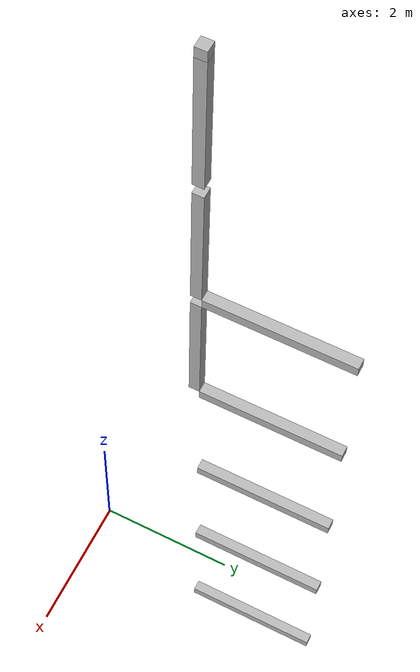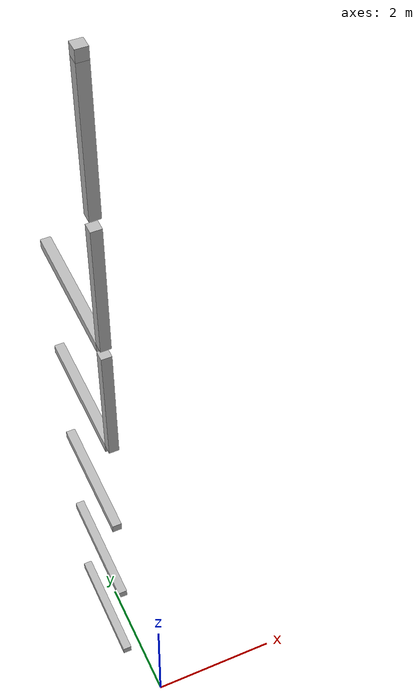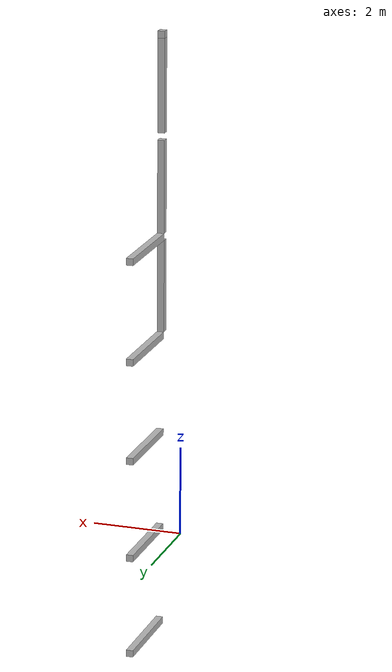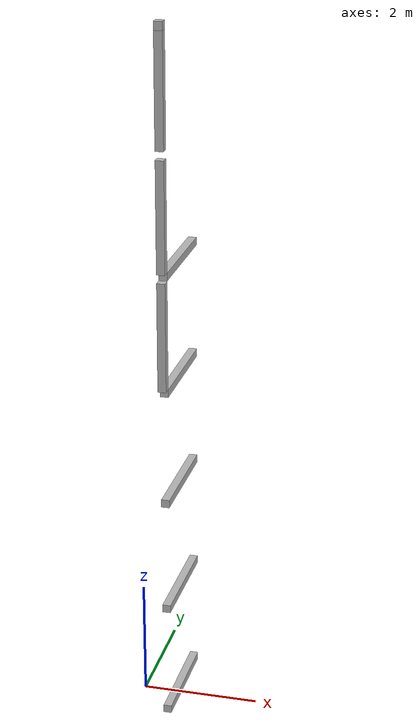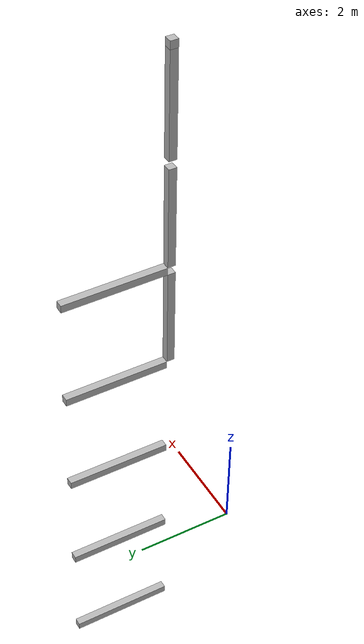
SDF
<sdf version="1.7">
 <world name="default">
  <model name="orthogonal_747_2.000.15_TS">
   <static>1</static>
   <link name="y_link_0_3_3">
    <inertial>
     <mass>1</mass>
     <inertia>
      <ixx>0.166667</ixx>
      <ixy>0</ixy>
      <ixz>0</ixz>
      <iyy>0.166667</iyy>
      <iyz>0</iyz>
      <izz>0.166667</izz>
     </inertia>
    </inertial>
    <pose>6.45 7.525 1.075 0 -0 0</pose>
    <visual name="visual_0">
     <laser_retro>554</laser_retro>
     <geometry><box><size>0.15 1e-06 0.15</size></box></geometry>
     <material>
      <script><name>Gazebo/Grey</name><uri>file://media/materials/scripts/gazebo.material</uri></script>
      <shader type="pixel"><normal_map>__default__</normal_map></shader>
      <ambient>0.678 0.498 0.659 1</ambient>
      <diffuse>0.7 0.7 0.7 1</diffuse>
      <specular>0.01 0.01 0.01 1</specular>
      <emissive>0 0 0 1</emissive>
     </material>
     <pose>0 -1 0 0 -0 0</pose>
     <transparency>1</transparency>
    </visual>
    <visual name="visual_1">
     <laser_retro>555</laser_retro>
     <geometry><box><size>0.15 1e-06 0.15</size></box></geometry>
     <material>
      <script><name>Gazebo/Grey</name><uri>file://media/materials/scripts/gazebo.material</uri></script>
      <shader type="pixel"><normal_map>__default__</normal_map></shader>
      <ambient>0.447 0.624 0.812 1</ambient>
      <diffuse>0.7 0.7 0.7 1</diffuse>
      <specular>0.01 0.01 0.01 1</specular>
      <emissive>0 0 0 1</emissive>
     </material>
     <pose>0 1 0 0 -0 0</pose>
     <transparency>1</transparency>
    </visual>
    <visual name="visual_2">
     <laser_retro>556</laser_retro>
     <geometry><box><size>0.15 2 1e-06</size></box></geometry>
     <material>
      <script><name>Gazebo/Grey</name><uri>file://media/materials/scripts/gazebo.material</uri></script>
      <shader type="pixel"><normal_map>__default__</normal_map></shader>
      <ambient>0.988 0.686 0.243 1</ambient>
      <diffuse>0.7 0.7 0.7 1</diffuse>
      <specular>0.01 0.01 0.01 1</specular>
      <emissive>0 0 0 1</emissive>
     </material>
     <pose>0 0 -0.075 0 -0 0</pose>
     <transparency>1</transparency>
    </visual>
    <visual name="visual_3">
     <laser_retro>557</laser_retro>
     <geometry><box><size>1e-06 2 0.15</size></box></geometry>
     <material>
      <script><name>Gazebo/Grey</name><uri>file://media/materials/scripts/gazebo.material</uri></script>
      <shader type="pixel"><normal_map>__default__</normal_map></shader>
      <ambient>0.988 0.914 0.31 1</ambient>
      <diffuse>0.7 0.7 0.7 1</diffuse>
      <specular>0.01 0.01 0.01 1</specular>
      <emissive>0 0 0 1</emissive>
     </material>
     <pose>0.075 0 0 0 -0 0</pose>
     <transparency>1</transparency>
    </visual>
    <visual name="visual_4">
     <laser_retro>558</laser_retro>
     <geometry><box><size>0.15 2 1e-06</size></box></geometry>
     <material>
      <script><name>Gazebo/Grey</name><uri>file://media/materials/scripts/gazebo.material</uri></script>
      <shader type="pixel"><normal_map>__default__</normal_map></shader>
      <ambient>0.937 0.161 0.161 1</ambient>
      <diffuse>0.7 0.7 0.7 1</diffuse>
      <specular>0.01 0.01 0.01 1</specular>
      <emissive>0 0 0 1</emissive>
     </material>
     <pose>0 0 0.075 0 -0 0</pose>
     <transparency>1</transparency>
    </visual>
    <visual name="visual_5">
     <laser_retro>559</laser_retro>
     <geometry><box><size>1e-06 2 0.15</size></box></geometry>
     <material>
      <script><name>Gazebo/Grey</name><uri>file://media/materials/scripts/gazebo.material</uri></script>
      <shader type="pixel"><normal_map>__default__</normal_map></shader>
      <ambient>0.541 0.886 0.204 1</ambient>
      <diffuse>0.7 0.7 0.7 1</diffuse>
      <specular>0.01 0.01 0.01 1</specular>
      <emissive>0 0 0 1</emissive>
     </material>
     <pose>-0.075 0 0 0 -0 0</pose>
     <transparency>1</transparency>
    </visual>
    <visual name="visual_texture">
     <geometry><box><size>0.149985 1.9998 0.149985</size></box></geometry>
     <material>
      <script>
       <uri>model://BASE_MODELS/simple_block_v2_textured/materials/scripts</uri>
       <uri>model://BASE_MODELS/simple_block_v2_textured/materials/textures</uri>
       <name>metal</name>
      </script>
     </material>
     <laser_retro>560</laser_retro>
    </visual>
    <collision name="collision">
     <geometry><box><size>0.15 2 0.15</size></box></geometry>
     <surface>
      <friction>
       <ode><mu>1</mu><mu2>1</mu2><fdir1>0 0 0</fdir1><slip1>0</slip1><slip2>0</slip2></ode>
       <torsional>
        <coefficient>1</coefficient>
        <patch_radius>0</patch_radius>
        <surface_radius>0</surface_radius>
        <use_patch_radius>1</use_patch_radius>
        <ode><slip>0</slip></ode>
       </torsional>
      </friction>
      <bounce><restitution_coefficient>0</restitution_coefficient><threshold>1e+06</threshold></bounce>
      <contact>
       <collide_without_contact>0</collide_without_contact>
       <collide_without_contact_bitmask>1</collide_without_contact_bitmask>
       <collide_bitmask>1</collide_bitmask>
       <ode>
        <soft_cfm>0</soft_cfm>
        <soft_erp>0.2</soft_erp>
        <kp>1e+13</kp>
        <kd>1</kd>
        <max_vel>0.01</max_vel>
        <min_depth>0</min_depth>
       </ode>
       <bullet>
        <split_impulse>1</split_impulse>
        <split_impulse_penetration_threshold>-0.01</split_impulse_penetration_threshold>
        <soft_cfm>0</soft_cfm>
        <soft_erp>0.2</soft_erp>
        <kp>1e+13</kp>
        <kd>1</kd>
       </bullet>
      </contact>
     </surface>
    </collision>
   </link>
   <link name="y_link_1_3_3">
    <inertial>
     <mass>1</mass>
     <inertia>
      <ixx>0.166667</ixx>
      <ixy>0</ixy>
      <ixz>0</ixz>
      <iyy>0.166667</iyy>
      <iyz>0</iyz>
      <izz>0.166667</izz>
     </inertia>
    </inertial>
    <pose>6.45 7.525 3.225 0 -0 0</pose>
    <visual name="visual_0">
     <laser_retro>1394</laser_retro>
     <geometry><box><size>0.15 1e-06 0.15</size></box></geometry>
     <material>
      <script><name>Gazebo/Grey</name><uri>file://media/materials/scripts/gazebo.material</uri></script>
      <shader type="pixel"><normal_map>__default__</normal_map></shader>
      <ambient>0.678 0.498 0.659 1</ambient>
      <diffuse>0.7 0.7 0.7 1</diffuse>
      <specular>0.01 0.01 0.01 1</specular>
      <emissive>0 0 0 1</emissive>
     </material>
     <pose>0 -1 0 0 -0 0</pose>
     <transparency>1</transparency>
    </visual>
    <visual name="visual_1">
     <laser_retro>1395</laser_retro>
     <geometry><box><size>0.15 1e-06 0.15</size></box></geometry>
     <material>
      <script><name>Gazebo/Grey</name><uri>file://media/materials/scripts/gazebo.material</uri></script>
      <shader type="pixel"><normal_map>__default__</normal_map></shader>
      <ambient>0.447 0.624 0.812 1</ambient>
      <diffuse>0.7 0.7 0.7 1</diffuse>
      <specular>0.01 0.01 0.01 1</specular>
      <emissive>0 0 0 1</emissive>
     </material>
     <pose>0 1 0 0 -0 0</pose>
     <transparency>1</transparency>
    </visual>
    <visual name="visual_2">
     <laser_retro>1396</laser_retro>
     <geometry><box><size>0.15 2 1e-06</size></box></geometry>
     <material>
      <script><name>Gazebo/Grey</name><uri>file://media/materials/scripts/gazebo.material</uri></script>
      <shader type="pixel"><normal_map>__default__</normal_map></shader>
      <ambient>0.988 0.686 0.243 1</ambient>
      <diffuse>0.7 0.7 0.7 1</diffuse>
      <specular>0.01 0.01 0.01 1</specular>
      <emissive>0 0 0 1</emissive>
     </material>
     <pose>0 0 -0.075 0 -0 0</pose>
     <transparency>1</transparency>
    </visual>
    <visual name="visual_3">
     <laser_retro>1397</laser_retro>
     <geometry><box><size>1e-06 2 0.15</size></box></geometry>
     <material>
      <script><name>Gazebo/Grey</name><uri>file://media/materials/scripts/gazebo.material</uri></script>
      <shader type="pixel"><normal_map>__default__</normal_map></shader>
      <ambient>0.988 0.914 0.31 1</ambient>
      <diffuse>0.7 0.7 0.7 1</diffuse>
      <specular>0.01 0.01 0.01 1</specular>
      <emissive>0 0 0 1</emissive>
     </material>
     <pose>0.075 0 0 0 -0 0</pose>
     <transparency>1</transparency>
    </visual>
    <visual name="visual_4">
     <laser_retro>1398</laser_retro>
     <geometry><box><size>0.15 2 1e-06</size></box></geometry>
     <material>
      <script><name>Gazebo/Grey</name><uri>file://media/materials/scripts/gazebo.material</uri></script>
      <shader type="pixel"><normal_map>__default__</normal_map></shader>
      <ambient>0.937 0.161 0.161 1</ambient>
      <diffuse>0.7 0.7 0.7 1</diffuse>
      <specular>0.01 0.01 0.01 1</specular>
      <emissive>0 0 0 1</emissive>
     </material>
     <pose>0 0 0.075 0 -0 0</pose>
     <transparency>1</transparency>
    </visual>
    <visual name="visual_5">
     <laser_retro>1399</laser_retro>
     <geometry><box><size>1e-06 2 0.15</size></box></geometry>
     <material>
      <script><name>Gazebo/Grey</name><uri>file://media/materials/scripts/gazebo.material</uri></script>
      <shader type="pixel"><normal_map>__default__</normal_map></shader>
      <ambient>0.541 0.886 0.204 1</ambient>
      <diffuse>0.7 0.7 0.7 1</diffuse>
      <specular>0.01 0.01 0.01 1</specular>
      <emissive>0 0 0 1</emissive>
     </material>
     <pose>-0.075 0 0 0 -0 0</pose>
     <transparency>1</transparency>
    </visual>
    <visual name="visual_texture">
     <geometry><box><size>0.149985 1.9998 0.149985</size></box></geometry>
     <material>
      <script>
       <uri>model://BASE_MODELS/simple_block_v2_textured/materials/scripts</uri>
       <uri>model://BASE_MODELS/simple_block_v2_textured/materials/textures</uri>
       <name>metal</name>
      </script>
     </material>
     <laser_retro>1400</laser_retro>
    </visual>
    <collision name="collision">
     <geometry><box><size>0.15 2 0.15</size></box></geometry>
     <surface>
      <friction>
       <ode><mu>1</mu><mu2>1</mu2><fdir1>0 0 0</fdir1><slip1>0</slip1><slip2>0</slip2></ode>
       <torsional>
        <coefficient>1</coefficient>
        <patch_radius>0</patch_radius>
        <surface_radius>0</surface_radius>
        <use_patch_radius>1</use_patch_radius>
        <ode><slip>0</slip></ode>
       </torsional>
      </friction>
      <bounce><restitution_coefficient>0</restitution_coefficient><threshold>1e+06</threshold></bounce>
      <contact>
       <collide_without_contact>0</collide_without_contact>
       <collide_without_contact_bitmask>1</collide_without_contact_bitmask>
       <collide_bitmask>1</collide_bitmask>
       <ode>
        <soft_cfm>0</soft_cfm>
        <soft_erp>0.2</soft_erp>
        <kp>1e+13</kp>
        <kd>1</kd>
        <max_vel>0.01</max_vel>
        <min_depth>0</min_depth>
       </ode>
       <bullet>
        <split_impulse>1</split_impulse>
        <split_impulse_penetration_threshold>-0.01</split_impulse_penetration_threshold>
        <soft_cfm>0</soft_cfm>
        <soft_erp>0.2</soft_erp>
        <kp>1e+13</kp>
        <kd>1</kd>
       </bullet>
      </contact>
     </surface>
    </collision>
   </link>
   <link name="y_link_2_3_3">
    <inertial>
     <mass>1</mass>
     <inertia>
      <ixx>0.166667</ixx>
      <ixy>0</ixy>
      <ixz>0</ixz>
      <iyy>0.166667</iyy>
      <iyz>0</iyz>
      <izz>0.166667</izz>
     </inertia>
    </inertial>
    <pose>6.45 7.525 5.375 0 -0 0</pose>
    <visual name="visual_0">
     <laser_retro>2297</laser_retro>
     <geometry><box><size>0.15 1e-06 0.15</size></box></geometry>
     <material>
      <script><name>Gazebo/Grey</name><uri>file://media/materials/scripts/gazebo.material</uri></script>
      <shader type="pixel"><normal_map>__default__</normal_map></shader>
      <ambient>0.678 0.498 0.659 1</ambient>
      <diffuse>0.7 0.7 0.7 1</diffuse>
      <specular>0.01 0.01 0.01 1</specular>
      <emissive>0 0 0 1</emissive>
     </material>
     <pose>0 -1 0 0 -0 0</pose>
     <transparency>1</transparency>
    </visual>
    <visual name="visual_1">
     <laser_retro>2298</laser_retro>
     <geometry><box><size>0.15 1e-06 0.15</size></box></geometry>
     <material>
      <script><name>Gazebo/Grey</name><uri>file://media/materials/scripts/gazebo.material</uri></script>
      <shader type="pixel"><normal_map>__default__</normal_map></shader>
      <ambient>0.447 0.624 0.812 1</ambient>
      <diffuse>0.7 0.7 0.7 1</diffuse>
      <specular>0.01 0.01 0.01 1</specular>
      <emissive>0 0 0 1</emissive>
     </material>
     <pose>0 1 0 0 -0 0</pose>
     <transparency>1</transparency>
    </visual>
    <visual name="visual_2">
     <laser_retro>2299</laser_retro>
     <geometry><box><size>0.15 2 1e-06</size></box></geometry>
     <material>
      <script><name>Gazebo/Grey</name><uri>file://media/materials/scripts/gazebo.material</uri></script>
      <shader type="pixel"><normal_map>__default__</normal_map></shader>
      <ambient>0.988 0.686 0.243 1</ambient>
      <diffuse>0.7 0.7 0.7 1</diffuse>
      <specular>0.01 0.01 0.01 1</specular>
      <emissive>0 0 0 1</emissive>
     </material>
     <pose>0 0 -0.075 0 -0 0</pose>
     <transparency>1</transparency>
    </visual>
    <visual name="visual_3">
     <laser_retro>2300</laser_retro>
     <geometry><box><size>1e-06 2 0.15</size></box></geometry>
     <material>
      <script><name>Gazebo/Grey</name><uri>file://media/materials/scripts/gazebo.material</uri></script>
      <shader type="pixel"><normal_map>__default__</normal_map></shader>
      <ambient>0.988 0.914 0.31 1</ambient>
      <diffuse>0.7 0.7 0.7 1</diffuse>
      <specular>0.01 0.01 0.01 1</specular>
      <emissive>0 0 0 1</emissive>
     </material>
     <pose>0.075 0 0 0 -0 0</pose>
     <transparency>1</transparency>
    </visual>
    <visual name="visual_4">
     <laser_retro>2301</laser_retro>
     <geometry><box><size>0.15 2 1e-06</size></box></geometry>
     <material>
      <script><name>Gazebo/Grey</name><uri>file://media/materials/scripts/gazebo.material</uri></script>
      <shader type="pixel"><normal_map>__default__</normal_map></shader>
      <ambient>0.937 0.161 0.161 1</ambient>
      <diffuse>0.7 0.7 0.7 1</diffuse>
      <specular>0.01 0.01 0.01 1</specular>
      <emissive>0 0 0 1</emissive>
     </material>
     <pose>0 0 0.075 0 -0 0</pose>
     <transparency>1</transparency>
    </visual>
    <visual name="visual_5">
     <laser_retro>2302</laser_retro>
     <geometry><box><size>1e-06 2 0.15</size></box></geometry>
     <material>
      <script><name>Gazebo/Grey</name><uri>file://media/materials/scripts/gazebo.material</uri></script>
      <shader type="pixel"><normal_map>__default__</normal_map></shader>
      <ambient>0.541 0.886 0.204 1</ambient>
      <diffuse>0.7 0.7 0.7 1</diffuse>
      <specular>0.01 0.01 0.01 1</specular>
      <emissive>0 0 0 1</emissive>
     </material>
     <pose>-0.075 0 0 0 -0 0</pose>
     <transparency>1</transparency>
    </visual>
    <visual name="visual_texture">
     <geometry><box><size>0.149985 1.9998 0.149985</size></box></geometry>
     <material>
      <script>
       <uri>model://BASE_MODELS/simple_block_v2_textured/materials/scripts</uri>
       <uri>model://BASE_MODELS/simple_block_v2_textured/materials/textures</uri>
       <name>metal</name>
      </script>
     </material>
     <laser_retro>2303</laser_retro>
    </visual>
    <collision name="collision">
     <geometry><box><size>0.15 2 0.15</size></box></geometry>
     <surface>
      <friction>
       <ode><mu>1</mu><mu2>1</mu2><fdir1>0 0 0</fdir1><slip1>0</slip1><slip2>0</slip2></ode>
       <torsional>
        <coefficient>1</coefficient>
        <patch_radius>0</patch_radius>
        <surface_radius>0</surface_radius>
        <use_patch_radius>1</use_patch_radius>
        <ode><slip>0</slip></ode>
       </torsional>
      </friction>
      <bounce><restitution_coefficient>0</restitution_coefficient><threshold>1e+06</threshold></bounce>
      <contact>
       <collide_without_contact>0</collide_without_contact>
       <collide_without_contact_bitmask>1</collide_without_contact_bitmask>
       <collide_bitmask>1</collide_bitmask>
       <ode>
        <soft_cfm>0</soft_cfm>
        <soft_erp>0.2</soft_erp>
        <kp>1e+13</kp>
        <kd>1</kd>
        <max_vel>0.01</max_vel>
        <min_depth>0</min_depth>
       </ode>
       <bullet>
        <split_impulse>1</split_impulse>
        <split_impulse_penetration_threshold>-0.01</split_impulse_penetration_threshold>
        <soft_cfm>0</soft_cfm>
        <soft_erp>0.2</soft_erp>
        <kp>1e+13</kp>
        <kd>1</kd>
       </bullet>
      </contact>
     </surface>
    </collision>
   </link>
   <link name="y_link_3_3_3">
    <inertial>
     <mass>1</mass>
     <inertia>
      <ixx>0.166667</ixx>
      <ixy>0</ixy>
      <ixz>0</ixz>
      <iyy>0.166667</iyy>
      <iyz>0</iyz>
      <izz>0.166667</izz>
     </inertia>
    </inertial>
    <pose>6.45 7.525 7.525 0 -0 0</pose>
    <visual name="visual_0">
     <laser_retro>3200</laser_retro>
     <geometry><box><size>0.15 1e-06 0.15</size></box></geometry>
     <material>
      <script><name>Gazebo/Grey</name><uri>file://media/materials/scripts/gazebo.material</uri></script>
      <shader type="pixel"><normal_map>__default__</normal_map></shader>
      <ambient>0.678 0.498 0.659 1</ambient>
      <diffuse>0.7 0.7 0.7 1</diffuse>
      <specular>0.01 0.01 0.01 1</specular>
      <emissive>0 0 0 1</emissive>
     </material>
     <pose>0 -1 0 0 -0 0</pose>
     <transparency>1</transparency>
    </visual>
    <visual name="visual_1">
     <laser_retro>3201</laser_retro>
     <geometry><box><size>0.15 1e-06 0.15</size></box></geometry>
     <material>
      <script><name>Gazebo/Grey</name><uri>file://media/materials/scripts/gazebo.material</uri></script>
      <shader type="pixel"><normal_map>__default__</normal_map></shader>
      <ambient>0.447 0.624 0.812 1</ambient>
      <diffuse>0.7 0.7 0.7 1</diffuse>
      <specular>0.01 0.01 0.01 1</specular>
      <emissive>0 0 0 1</emissive>
     </material>
     <pose>0 1 0 0 -0 0</pose>
     <transparency>1</transparency>
    </visual>
    <visual name="visual_2">
     <laser_retro>3202</laser_retro>
     <geometry><box><size>0.15 2 1e-06</size></box></geometry>
     <material>
      <script><name>Gazebo/Grey</name><uri>file://media/materials/scripts/gazebo.material</uri></script>
      <shader type="pixel"><normal_map>__default__</normal_map></shader>
      <ambient>0.988 0.686 0.243 1</ambient>
      <diffuse>0.7 0.7 0.7 1</diffuse>
      <specular>0.01 0.01 0.01 1</specular>
      <emissive>0 0 0 1</emissive>
     </material>
     <pose>0 0 -0.075 0 -0 0</pose>
     <transparency>1</transparency>
    </visual>
    <visual name="visual_3">
     <laser_retro>3203</laser_retro>
     <geometry><box><size>1e-06 2 0.15</size></box></geometry>
     <material>
      <script><name>Gazebo/Grey</name><uri>file://media/materials/scripts/gazebo.material</uri></script>
      <shader type="pixel"><normal_map>__default__</normal_map></shader>
      <ambient>0.988 0.914 0.31 1</ambient>
      <diffuse>0.7 0.7 0.7 1</diffuse>
      <specular>0.01 0.01 0.01 1</specular>
      <emissive>0 0 0 1</emissive>
     </material>
     <pose>0.075 0 0 0 -0 0</pose>
     <transparency>1</transparency>
    </visual>
    <visual name="visual_4">
     <laser_retro>3204</laser_retro>
     <geometry><box><size>0.15 2 1e-06</size></box></geometry>
     <material>
      <script><name>Gazebo/Grey</name><uri>file://media/materials/scripts/gazebo.material</uri></script>
      <shader type="pixel"><normal_map>__default__</normal_map></shader>
      <ambient>0.937 0.161 0.161 1</ambient>
      <diffuse>0.7 0.7 0.7 1</diffuse>
      <specular>0.01 0.01 0.01 1</specular>
      <emissive>0 0 0 1</emissive>
     </material>
     <pose>0 0 0.075 0 -0 0</pose>
     <transparency>1</transparency>
    </visual>
    <visual name="visual_5">
     <laser_retro>3205</laser_retro>
     <geometry><box><size>1e-06 2 0.15</size></box></geometry>
     <material>
      <script><name>Gazebo/Grey</name><uri>file://media/materials/scripts/gazebo.material</uri></script>
      <shader type="pixel"><normal_map>__default__</normal_map></shader>
      <ambient>0.541 0.886 0.204 1</ambient>
      <diffuse>0.7 0.7 0.7 1</diffuse>
      <specular>0.01 0.01 0.01 1</specular>
      <emissive>0 0 0 1</emissive>
     </material>
     <pose>-0.075 0 0 0 -0 0</pose>
     <transparency>1</transparency>
    </visual>
    <visual name="visual_texture">
     <geometry><box><size>0.149985 1.9998 0.149985</size></box></geometry>
     <material>
      <script>
       <uri>model://BASE_MODELS/simple_block_v2_textured/materials/scripts</uri>
       <uri>model://BASE_MODELS/simple_block_v2_textured/materials/textures</uri>
       <name>metal</name>
      </script>
     </material>
     <laser_retro>3206</laser_retro>
    </visual>
    <collision name="collision">
     <geometry><box><size>0.15 2 0.15</size></box></geometry>
     <surface>
      <friction>
       <ode><mu>1</mu><mu2>1</mu2><fdir1>0 0 0</fdir1><slip1>0</slip1><slip2>0</slip2></ode>
       <torsional>
        <coefficient>1</coefficient>
        <patch_radius>0</patch_radius>
        <surface_radius>0</surface_radius>
        <use_patch_radius>1</use_patch_radius>
        <ode><slip>0</slip></ode>
       </torsional>
      </friction>
      <bounce><restitution_coefficient>0</restitution_coefficient><threshold>1e+06</threshold></bounce>
      <contact>
       <collide_without_contact>0</collide_without_contact>
       <collide_without_contact_bitmask>1</collide_without_contact_bitmask>
       <collide_bitmask>1</collide_bitmask>
       <ode>
        <soft_cfm>0</soft_cfm>
        <soft_erp>0.2</soft_erp>
        <kp>1e+13</kp>
        <kd>1</kd>
        <max_vel>0.01</max_vel>
        <min_depth>0</min_depth>
       </ode>
       <bullet>
        <split_impulse>1</split_impulse>
        <split_impulse_penetration_threshold>-0.01</split_impulse_penetration_threshold>
        <soft_cfm>0</soft_cfm>
        <soft_erp>0.2</soft_erp>
        <kp>1e+13</kp>
        <kd>1</kd>
       </bullet>
      </contact>
     </surface>
    </collision>
   </link>
   <link name="y_link_4_3_3">
    <inertial>
     <mass>1</mass>
     <inertia>
      <ixx>0.166667</ixx>
      <ixy>0</ixy>
      <ixz>0</ixz>
      <iyy>0.166667</iyy>
      <iyz>0</iyz>
      <izz>0.166667</izz>
     </inertia>
    </inertial>
    <pose>6.45 7.525 9.675 0 -0 0</pose>
    <visual name="visual_0">
     <laser_retro>4103</laser_retro>
     <geometry><box><size>0.15 1e-06 0.15</size></box></geometry>
     <material>
      <script><name>Gazebo/Grey</name><uri>file://media/materials/scripts/gazebo.material</uri></script>
      <shader type="pixel"><normal_map>__default__</normal_map></shader>
      <ambient>0.678 0.498 0.659 1</ambient>
      <diffuse>0.7 0.7 0.7 1</diffuse>
      <specular>0.01 0.01 0.01 1</specular>
      <emissive>0 0 0 1</emissive>
     </material>
     <pose>0 -1 0 0 -0 0</pose>
     <transparency>1</transparency>
    </visual>
    <visual name="visual_1">
     <laser_retro>4104</laser_retro>
     <geometry><box><size>0.15 1e-06 0.15</size></box></geometry>
     <material>
      <script><name>Gazebo/Grey</name><uri>file://media/materials/scripts/gazebo.material</uri></script>
      <shader type="pixel"><normal_map>__default__</normal_map></shader>
      <ambient>0.447 0.624 0.812 1</ambient>
      <diffuse>0.7 0.7 0.7 1</diffuse>
      <specular>0.01 0.01 0.01 1</specular>
      <emissive>0 0 0 1</emissive>
     </material>
     <pose>0 1 0 0 -0 0</pose>
     <transparency>1</transparency>
    </visual>
    <visual name="visual_2">
     <laser_retro>4105</laser_retro>
     <geometry><box><size>0.15 2 1e-06</size></box></geometry>
     <material>
      <script><name>Gazebo/Grey</name><uri>file://media/materials/scripts/gazebo.material</uri></script>
      <shader type="pixel"><normal_map>__default__</normal_map></shader>
      <ambient>0.988 0.686 0.243 1</ambient>
      <diffuse>0.7 0.7 0.7 1</diffuse>
      <specular>0.01 0.01 0.01 1</specular>
      <emissive>0 0 0 1</emissive>
     </material>
     <pose>0 0 -0.075 0 -0 0</pose>
     <transparency>1</transparency>
    </visual>
    <visual name="visual_3">
     <laser_retro>4106</laser_retro>
     <geometry><box><size>1e-06 2 0.15</size></box></geometry>
     <material>
      <script><name>Gazebo/Grey</name><uri>file://media/materials/scripts/gazebo.material</uri></script>
      <shader type="pixel"><normal_map>__default__</normal_map></shader>
      <ambient>0.988 0.914 0.31 1</ambient>
      <diffuse>0.7 0.7 0.7 1</diffuse>
      <specular>0.01 0.01 0.01 1</specular>
      <emissive>0 0 0 1</emissive>
     </material>
     <pose>0.075 0 0 0 -0 0</pose>
     <transparency>1</transparency>
    </visual>
    <visual name="visual_4">
     <laser_retro>4107</laser_retro>
     <geometry><box><size>0.15 2 1e-06</size></box></geometry>
     <material>
      <script><name>Gazebo/Grey</name><uri>file://media/materials/scripts/gazebo.material</uri></script>
      <shader type="pixel"><normal_map>__default__</normal_map></shader>
      <ambient>0.937 0.161 0.161 1</ambient>
      <diffuse>0.7 0.7 0.7 1</diffuse>
      <specular>0.01 0.01 0.01 1</specular>
      <emissive>0 0 0 1</emissive>
     </material>
     <pose>0 0 0.075 0 -0 0</pose>
     <transparency>1</transparency>
    </visual>
    <visual name="visual_5">
     <laser_retro>4108</laser_retro>
     <geometry><box><size>1e-06 2 0.15</size></box></geometry>
     <material>
      <script><name>Gazebo/Grey</name><uri>file://media/materials/scripts/gazebo.material</uri></script>
      <shader type="pixel"><normal_map>__default__</normal_map></shader>
      <ambient>0.541 0.886 0.204 1</ambient>
      <diffuse>0.7 0.7 0.7 1</diffuse>
      <specular>0.01 0.01 0.01 1</specular>
      <emissive>0 0 0 1</emissive>
     </material>
     <pose>-0.075 0 0 0 -0 0</pose>
     <transparency>1</transparency>
    </visual>
    <visual name="visual_texture">
     <geometry><box><size>0.149985 1.9998 0.149985</size></box></geometry>
     <material>
      <script>
       <uri>model://BASE_MODELS/simple_block_v2_textured/materials/scripts</uri>
       <uri>model://BASE_MODELS/simple_block_v2_textured/materials/textures</uri>
       <name>metal</name>
      </script>
     </material>
     <laser_retro>4109</laser_retro>
    </visual>
    <collision name="collision">
     <geometry><box><size>0.15 2 0.15</size></box></geometry>
     <surface>
      <friction>
       <ode><mu>1</mu><mu2>1</mu2><fdir1>0 0 0</fdir1><slip1>0</slip1><slip2>0</slip2></ode>
       <torsional>
        <coefficient>1</coefficient>
        <patch_radius>0</patch_radius>
        <surface_radius>0</surface_radius>
        <use_patch_radius>1</use_patch_radius>
        <ode><slip>0</slip></ode>
       </torsional>
      </friction>
      <bounce><restitution_coefficient>0</restitution_coefficient><threshold>1e+06</threshold></bounce>
      <contact>
       <collide_without_contact>0</collide_without_contact>
       <collide_without_contact_bitmask>1</collide_without_contact_bitmask>
       <collide_bitmask>1</collide_bitmask>
       <ode>
        <soft_cfm>0</soft_cfm>
        <soft_erp>0.2</soft_erp>
        <kp>1e+13</kp>
        <kd>1</kd>
        <max_vel>0.01</max_vel>
        <min_depth>0</min_depth>
       </ode>
       <bullet>
        <split_impulse>1</split_impulse>
        <split_impulse_penetration_threshold>-0.01</split_impulse_penetration_threshold>
        <soft_cfm>0</soft_cfm>
        <soft_erp>0.2</soft_erp>
        <kp>1e+13</kp>
        <kd>1</kd>
       </bullet>
      </contact>
     </surface>
    </collision>
   </link>
   <link name="z_link_4_3_3">
    <inertial>
     <mass>1</mass>
     <inertia>
      <ixx>0.166667</ixx>
      <ixy>0</ixy>
      <ixz>0</ixz>
      <iyy>0.166667</iyy>
      <iyz>0</iyz>
      <izz>0.166667</izz>
     </inertia>
    </inertial>
    <pose>6.45 6.45 8.6 0 -0 0</pose>
    <visual name="visual_0">
     <laser_retro>4110</laser_retro>
     <geometry><box><size>0.15 1e-06 2</size></box></geometry>
     <material>
      <script><name>Gazebo/Grey</name><uri>file://media/materials/scripts/gazebo.material</uri></script>
      <shader type="pixel"><normal_map>__default__</normal_map></shader>
      <ambient>0.678 0.498 0.659 1</ambient>
      <diffuse>0.7 0.7 0.7 1</diffuse>
      <specular>0.01 0.01 0.01 1</specular>
      <emissive>0 0 0 1</emissive>
     </material>
     <pose>0 -0.075 0 0 -0 0</pose>
     <transparency>1</transparency>
    </visual>
    <visual name="visual_1">
     <laser_retro>4111</laser_retro>
     <geometry><box><size>0.15 1e-06 2</size></box></geometry>
     <material>
      <script><name>Gazebo/Grey</name><uri>file://media/materials/scripts/gazebo.material</uri></script>
      <shader type="pixel"><normal_map>__default__</normal_map></shader>
      <ambient>0.447 0.624 0.812 1</ambient>
      <diffuse>0.7 0.7 0.7 1</diffuse>
      <specular>0.01 0.01 0.01 1</specular>
      <emissive>0 0 0 1</emissive>
     </material>
     <pose>0 0.075 0 0 -0 0</pose>
     <transparency>1</transparency>
    </visual>
    <visual name="visual_2">
     <laser_retro>4112</laser_retro>
     <geometry><box><size>0.15 0.15 1e-06</size></box></geometry>
     <material>
      <script><name>Gazebo/Grey</name><uri>file://media/materials/scripts/gazebo.material</uri></script>
      <shader type="pixel"><normal_map>__default__</normal_map></shader>
      <ambient>0.988 0.686 0.243 1</ambient>
      <diffuse>0.7 0.7 0.7 1</diffuse>
      <specular>0.01 0.01 0.01 1</specular>
      <emissive>0 0 0 1</emissive>
     </material>
     <pose>0 0 -1 0 -0 0</pose>
     <transparency>1</transparency>
    </visual>
    <visual name="visual_3">
     <laser_retro>4113</laser_retro>
     <geometry><box><size>1e-06 0.15 2</size></box></geometry>
     <material>
      <script><name>Gazebo/Grey</name><uri>file://media/materials/scripts/gazebo.material</uri></script>
      <shader type="pixel"><normal_map>__default__</normal_map></shader>
      <ambient>0.988 0.914 0.31 1</ambient>
      <diffuse>0.7 0.7 0.7 1</diffuse>
      <specular>0.01 0.01 0.01 1</specular>
      <emissive>0 0 0 1</emissive>
     </material>
     <pose>0.075 0 0 0 -0 0</pose>
     <transparency>1</transparency>
    </visual>
    <visual name="visual_4">
     <laser_retro>4114</laser_retro>
     <geometry><box><size>0.15 0.15 1e-06</size></box></geometry>
     <material>
      <script><name>Gazebo/Grey</name><uri>file://media/materials/scripts/gazebo.material</uri></script>
      <shader type="pixel"><normal_map>__default__</normal_map></shader>
      <ambient>0.937 0.161 0.161 1</ambient>
      <diffuse>0.7 0.7 0.7 1</diffuse>
      <specular>0.01 0.01 0.01 1</specular>
      <emissive>0 0 0 1</emissive>
     </material>
     <pose>0 0 1 0 -0 0</pose>
     <transparency>1</transparency>
    </visual>
    <visual name="visual_5">
     <laser_retro>4115</laser_retro>
     <geometry><box><size>1e-06 0.15 2</size></box></geometry>
     <material>
      <script><name>Gazebo/Grey</name><uri>file://media/materials/scripts/gazebo.material</uri></script>
      <shader type="pixel"><normal_map>__default__</normal_map></shader>
      <ambient>0.541 0.886 0.204 1</ambient>
      <diffuse>0.7 0.7 0.7 1</diffuse>
      <specular>0.01 0.01 0.01 1</specular>
      <emissive>0 0 0 1</emissive>
     </material>
     <pose>-0.075 0 0 0 -0 0</pose>
     <transparency>1</transparency>
    </visual>
    <visual name="visual_texture">
     <geometry><box><size>0.149985 0.149985 1.9998</size></box></geometry>
     <material>
      <script>
       <uri>model://BASE_MODELS/simple_block_v2_textured/materials/scripts</uri>
       <uri>model://BASE_MODELS/simple_block_v2_textured/materials/textures</uri>
       <name>metal</name>
      </script>
     </material>
     <laser_retro>4116</laser_retro>
    </visual>
    <collision name="collision">
     <geometry><box><size>0.15 0.15 2</size></box></geometry>
     <surface>
      <friction>
       <ode><mu>1</mu><mu2>1</mu2><fdir1>0 0 0</fdir1><slip1>0</slip1><slip2>0</slip2></ode>
       <torsional>
        <coefficient>1</coefficient>
        <patch_radius>0</patch_radius>
        <surface_radius>0</surface_radius>
        <use_patch_radius>1</use_patch_radius>
        <ode><slip>0</slip></ode>
       </torsional>
      </friction>
      <bounce><restitution_coefficient>0</restitution_coefficient><threshold>1e+06</threshold></bounce>
      <contact>
       <collide_without_contact>0</collide_without_contact>
       <collide_without_contact_bitmask>1</collide_without_contact_bitmask>
       <collide_bitmask>1</collide_bitmask>
       <ode>
        <soft_cfm>0</soft_cfm>
        <soft_erp>0.2</soft_erp>
        <kp>1e+13</kp>
        <kd>1</kd>
        <max_vel>0.01</max_vel>
        <min_depth>0</min_depth>
       </ode>
       <bullet>
        <split_impulse>1</split_impulse>
        <split_impulse_penetration_threshold>-0.01</split_impulse_penetration_threshold>
        <soft_cfm>0</soft_cfm>
        <soft_erp>0.2</soft_erp>
        <kp>1e+13</kp>
        <kd>1</kd>
       </bullet>
      </contact>
     </surface>
    </collision>
   </link>
   <link name="z_link_5_3_3">
    <inertial>
     <mass>1</mass>
     <inertia>
      <ixx>0.166667</ixx>
      <ixy>0</ixy>
      <ixz>0</ixz>
      <iyy>0.166667</iyy>
      <iyz>0</iyz>
      <izz>0.166667</izz>
     </inertia>
    </inertial>
    <pose>6.45 6.45 10.75 0 -0 0</pose>
    <visual name="visual_0">
     <laser_retro>5013</laser_retro>
     <geometry><box><size>0.15 1e-06 2</size></box></geometry>
     <material>
      <script><name>Gazebo/Grey</name><uri>file://media/materials/scripts/gazebo.material</uri></script>
      <shader type="pixel"><normal_map>__default__</normal_map></shader>
      <ambient>0.678 0.498 0.659 1</ambient>
      <diffuse>0.7 0.7 0.7 1</diffuse>
      <specular>0.01 0.01 0.01 1</specular>
      <emissive>0 0 0 1</emissive>
     </material>
     <pose>0 -0.075 0 0 -0 0</pose>
     <transparency>1</transparency>
    </visual>
    <visual name="visual_1">
     <laser_retro>5014</laser_retro>
     <geometry><box><size>0.15 1e-06 2</size></box></geometry>
     <material>
      <script><name>Gazebo/Grey</name><uri>file://media/materials/scripts/gazebo.material</uri></script>
      <shader type="pixel"><normal_map>__default__</normal_map></shader>
      <ambient>0.447 0.624 0.812 1</ambient>
      <diffuse>0.7 0.7 0.7 1</diffuse>
      <specular>0.01 0.01 0.01 1</specular>
      <emissive>0 0 0 1</emissive>
     </material>
     <pose>0 0.075 0 0 -0 0</pose>
     <transparency>1</transparency>
    </visual>
    <visual name="visual_2">
     <laser_retro>5015</laser_retro>
     <geometry><box><size>0.15 0.15 1e-06</size></box></geometry>
     <material>
      <script><name>Gazebo/Grey</name><uri>file://media/materials/scripts/gazebo.material</uri></script>
      <shader type="pixel"><normal_map>__default__</normal_map></shader>
      <ambient>0.988 0.686 0.243 1</ambient>
      <diffuse>0.7 0.7 0.7 1</diffuse>
      <specular>0.01 0.01 0.01 1</specular>
      <emissive>0 0 0 1</emissive>
     </material>
     <pose>0 0 -1 0 -0 0</pose>
     <transparency>1</transparency>
    </visual>
    <visual name="visual_3">
     <laser_retro>5016</laser_retro>
     <geometry><box><size>1e-06 0.15 2</size></box></geometry>
     <material>
      <script><name>Gazebo/Grey</name><uri>file://media/materials/scripts/gazebo.material</uri></script>
      <shader type="pixel"><normal_map>__default__</normal_map></shader>
      <ambient>0.988 0.914 0.31 1</ambient>
      <diffuse>0.7 0.7 0.7 1</diffuse>
      <specular>0.01 0.01 0.01 1</specular>
      <emissive>0 0 0 1</emissive>
     </material>
     <pose>0.075 0 0 0 -0 0</pose>
     <transparency>1</transparency>
    </visual>
    <visual name="visual_4">
     <laser_retro>5017</laser_retro>
     <geometry><box><size>0.15 0.15 1e-06</size></box></geometry>
     <material>
      <script><name>Gazebo/Grey</name><uri>file://media/materials/scripts/gazebo.material</uri></script>
      <shader type="pixel"><normal_map>__default__</normal_map></shader>
      <ambient>0.937 0.161 0.161 1</ambient>
      <diffuse>0.7 0.7 0.7 1</diffuse>
      <specular>0.01 0.01 0.01 1</specular>
      <emissive>0 0 0 1</emissive>
     </material>
     <pose>0 0 1 0 -0 0</pose>
     <transparency>1</transparency>
    </visual>
    <visual name="visual_5">
     <laser_retro>5018</laser_retro>
     <geometry><box><size>1e-06 0.15 2</size></box></geometry>
     <material>
      <script><name>Gazebo/Grey</name><uri>file://media/materials/scripts/gazebo.material</uri></script>
      <shader type="pixel"><normal_map>__default__</normal_map></shader>
      <ambient>0.541 0.886 0.204 1</ambient>
      <diffuse>0.7 0.7 0.7 1</diffuse>
      <specular>0.01 0.01 0.01 1</specular>
      <emissive>0 0 0 1</emissive>
     </material>
     <pose>-0.075 0 0 0 -0 0</pose>
     <transparency>1</transparency>
    </visual>
    <visual name="visual_texture">
     <geometry><box><size>0.149985 0.149985 1.9998</size></box></geometry>
     <material>
      <script>
       <uri>model://BASE_MODELS/simple_block_v2_textured/materials/scripts</uri>
       <uri>model://BASE_MODELS/simple_block_v2_textured/materials/textures</uri>
       <name>metal</name>
      </script>
     </material>
     <laser_retro>5019</laser_retro>
    </visual>
    <collision name="collision">
     <geometry><box><size>0.15 0.15 2</size></box></geometry>
     <surface>
      <friction>
       <ode><mu>1</mu><mu2>1</mu2><fdir1>0 0 0</fdir1><slip1>0</slip1><slip2>0</slip2></ode>
       <torsional>
        <coefficient>1</coefficient>
        <patch_radius>0</patch_radius>
        <surface_radius>0</surface_radius>
        <use_patch_radius>1</use_patch_radius>
        <ode><slip>0</slip></ode>
       </torsional>
      </friction>
      <bounce><restitution_coefficient>0</restitution_coefficient><threshold>1e+06</threshold></bounce>
      <contact>
       <collide_without_contact>0</collide_without_contact>
       <collide_without_contact_bitmask>1</collide_without_contact_bitmask>
       <collide_bitmask>1</collide_bitmask>
       <ode>
        <soft_cfm>0</soft_cfm>
        <soft_erp>0.2</soft_erp>
        <kp>1e+13</kp>
        <kd>1</kd>
        <max_vel>0.01</max_vel>
        <min_depth>0</min_depth>
       </ode>
       <bullet>
        <split_impulse>1</split_impulse>
        <split_impulse_penetration_threshold>-0.01</split_impulse_penetration_threshold>
        <soft_cfm>0</soft_cfm>
        <soft_erp>0.2</soft_erp>
        <kp>1e+13</kp>
        <kd>1</kd>
       </bullet>
      </contact>
     </surface>
    </collision>
   </link>
   <link name="u_link_6_3_3">
    <inertial>
     <mass>1</mass>
     <inertia>
      <ixx>0.166667</ixx>
      <ixy>0</ixy>
      <ixz>0</ixz>
      <iyy>0.166667</iyy>
      <iyz>0</iyz>
      <izz>0.166667</izz>
     </inertia>
    </inertial>
    <pose>6.45 6.45 13.975 0 -0 0</pose>
    <visual name="visual_0">
     <laser_retro>6014</laser_retro>
     <geometry><box><size>0.15 1e-06 0.15</size></box></geometry>
     <material>
      <script><name>Gazebo/Grey</name><uri>file://media/materials/scripts/gazebo.material</uri></script>
      <shader type="pixel"><normal_map>__default__</normal_map></shader>
      <ambient>0.678 0.498 0.659 1</ambient>
      <diffuse>0.7 0.7 0.7 1</diffuse>
      <specular>0.01 0.01 0.01 1</specular>
      <emissive>0 0 0 1</emissive>
     </material>
     <pose>0 -0.075 0 0 -0 0</pose>
     <transparency>1</transparency>
    </visual>
    <visual name="visual_1">
     <laser_retro>6015</laser_retro>
     <geometry><box><size>0.15 1e-06 0.15</size></box></geometry>
     <material>
      <script><name>Gazebo/Grey</name><uri>file://media/materials/scripts/gazebo.material</uri></script>
      <shader type="pixel"><normal_map>__default__</normal_map></shader>
      <ambient>0.447 0.624 0.812 1</ambient>
      <diffuse>0.7 0.7 0.7 1</diffuse>
      <specular>0.01 0.01 0.01 1</specular>
      <emissive>0 0 0 1</emissive>
     </material>
     <pose>0 0.075 0 0 -0 0</pose>
     <transparency>1</transparency>
    </visual>
    <visual name="visual_2">
     <laser_retro>6016</laser_retro>
     <geometry><box><size>0.15 0.15 1e-06</size></box></geometry>
     <material>
      <script><name>Gazebo/Grey</name><uri>file://media/materials/scripts/gazebo.material</uri></script>
      <shader type="pixel"><normal_map>__default__</normal_map></shader>
      <ambient>0.988 0.686 0.243 1</ambient>
      <diffuse>0.7 0.7 0.7 1</diffuse>
      <specular>0.01 0.01 0.01 1</specular>
      <emissive>0 0 0 1</emissive>
     </material>
     <pose>0 0 -0.075 0 -0 0</pose>
     <transparency>1</transparency>
    </visual>
    <visual name="visual_3">
     <laser_retro>6017</laser_retro>
     <geometry><box><size>1e-06 0.15 0.15</size></box></geometry>
     <material>
      <script><name>Gazebo/Grey</name><uri>file://media/materials/scripts/gazebo.material</uri></script>
      <shader type="pixel"><normal_map>__default__</normal_map></shader>
      <ambient>0.988 0.914 0.31 1</ambient>
      <diffuse>0.7 0.7 0.7 1</diffuse>
      <specular>0.01 0.01 0.01 1</specular>
      <emissive>0 0 0 1</emissive>
     </material>
     <pose>0.075 0 0 0 -0 0</pose>
     <transparency>1</transparency>
    </visual>
    <visual name="visual_4">
     <laser_retro>6018</laser_retro>
     <geometry><box><size>0.15 0.15 1e-06</size></box></geometry>
     <material>
      <script><name>Gazebo/Grey</name><uri>file://media/materials/scripts/gazebo.material</uri></script>
      <shader type="pixel"><normal_map>__default__</normal_map></shader>
      <ambient>0.937 0.161 0.161 1</ambient>
      <diffuse>0.7 0.7 0.7 1</diffuse>
      <specular>0.01 0.01 0.01 1</specular>
      <emissive>0 0 0 1</emissive>
     </material>
     <pose>0 0 0.075 0 -0 0</pose>
     <transparency>1</transparency>
    </visual>
    <visual name="visual_5">
     <laser_retro>6019</laser_retro>
     <geometry><box><size>1e-06 0.15 0.15</size></box></geometry>
     <material>
      <script><name>Gazebo/Grey</name><uri>file://media/materials/scripts/gazebo.material</uri></script>
      <shader type="pixel"><normal_map>__default__</normal_map></shader>
      <ambient>0.541 0.886 0.204 1</ambient>
      <diffuse>0.7 0.7 0.7 1</diffuse>
      <specular>0.01 0.01 0.01 1</specular>
      <emissive>0 0 0 1</emissive>
     </material>
     <pose>-0.075 0 0 0 -0 0</pose>
     <transparency>1</transparency>
    </visual>
    <visual name="visual_texture">
     <geometry><box><size>0.149985 0.149985 0.149985</size></box></geometry>
     <material>
      <script>
       <uri>model://BASE_MODELS/simple_block_v2_textured/materials/scripts</uri>
       <uri>model://BASE_MODELS/simple_block_v2_textured/materials/textures</uri>
       <name>metal</name>
      </script>
     </material>
     <laser_retro>6020</laser_retro>
    </visual>
    <collision name="collision">
     <geometry><box><size>0.15 0.15 0.15</size></box></geometry>
     <surface>
      <friction>
       <ode><mu>1</mu><mu2>1</mu2><fdir1>0 0 0</fdir1><slip1>0</slip1><slip2>0</slip2></ode>
       <torsional>
        <coefficient>1</coefficient>
        <patch_radius>0</patch_radius>
        <surface_radius>0</surface_radius>
        <use_patch_radius>1</use_patch_radius>
        <ode><slip>0</slip></ode>
       </torsional>
      </friction>
      <bounce><restitution_coefficient>0</restitution_coefficient><threshold>1e+06</threshold></bounce>
      <contact>
       <collide_without_contact>0</collide_without_contact>
       <collide_without_contact_bitmask>1</collide_without_contact_bitmask>
       <collide_bitmask>1</collide_bitmask>
       <ode>
        <soft_cfm>0</soft_cfm>
        <soft_erp>0.2</soft_erp>
        <kp>1e+13</kp>
        <kd>1</kd>
        <max_vel>0.01</max_vel>
        <min_depth>0</min_depth>
       </ode>
       <bullet>
        <split_impulse>1</split_impulse>
        <split_impulse_penetration_threshold>-0.01</split_impulse_penetration_threshold>
        <soft_cfm>0</soft_cfm>
        <soft_erp>0.2</soft_erp>
        <kp>1e+13</kp>
        <kd>1</kd>
       </bullet>
      </contact>
     </surface>
    </collision>
   </link>
   <link name="z_link_6_3_3">
    <inertial>
     <mass>1</mass>
     <inertia>
      <ixx>0.166667</ixx>
      <ixy>0</ixy>
      <ixz>0</ixz>
      <iyy>0.166667</iyy>
      <iyz>0</iyz>
      <izz>0.166667</izz>
     </inertia>
    </inertial>
    <pose>6.45 6.45 12.9 0 -0 0</pose>
    <visual name="visual_0">
     <laser_retro>6021</laser_retro>
     <geometry><box><size>0.15 1e-06 2</size></box></geometry>
     <material>
      <script><name>Gazebo/Grey</name><uri>file://media/materials/scripts/gazebo.material</uri></script>
      <shader type="pixel"><normal_map>__default__</normal_map></shader>
      <ambient>0.678 0.498 0.659 1</ambient>
      <diffuse>0.7 0.7 0.7 1</diffuse>
      <specular>0.01 0.01 0.01 1</specular>
      <emissive>0 0 0 1</emissive>
     </material>
     <pose>0 -0.075 0 0 -0 0</pose>
     <transparency>1</transparency>
    </visual>
    <visual name="visual_1">
     <laser_retro>6022</laser_retro>
     <geometry><box><size>0.15 1e-06 2</size></box></geometry>
     <material>
      <script><name>Gazebo/Grey</name><uri>file://media/materials/scripts/gazebo.material</uri></script>
      <shader type="pixel"><normal_map>__default__</normal_map></shader>
      <ambient>0.447 0.624 0.812 1</ambient>
      <diffuse>0.7 0.7 0.7 1</diffuse>
      <specular>0.01 0.01 0.01 1</specular>
      <emissive>0 0 0 1</emissive>
     </material>
     <pose>0 0.075 0 0 -0 0</pose>
     <transparency>1</transparency>
    </visual>
    <visual name="visual_2">
     <laser_retro>6023</laser_retro>
     <geometry><box><size>0.15 0.15 1e-06</size></box></geometry>
     <material>
      <script><name>Gazebo/Grey</name><uri>file://media/materials/scripts/gazebo.material</uri></script>
      <shader type="pixel"><normal_map>__default__</normal_map></shader>
      <ambient>0.988 0.686 0.243 1</ambient>
      <diffuse>0.7 0.7 0.7 1</diffuse>
      <specular>0.01 0.01 0.01 1</specular>
      <emissive>0 0 0 1</emissive>
     </material>
     <pose>0 0 -1 0 -0 0</pose>
     <transparency>1</transparency>
    </visual>
    <visual name="visual_3">
     <laser_retro>6024</laser_retro>
     <geometry><box><size>1e-06 0.15 2</size></box></geometry>
     <material>
      <script><name>Gazebo/Grey</name><uri>file://media/materials/scripts/gazebo.material</uri></script>
      <shader type="pixel"><normal_map>__default__</normal_map></shader>
      <ambient>0.988 0.914 0.31 1</ambient>
      <diffuse>0.7 0.7 0.7 1</diffuse>
      <specular>0.01 0.01 0.01 1</specular>
      <emissive>0 0 0 1</emissive>
     </material>
     <pose>0.075 0 0 0 -0 0</pose>
     <transparency>1</transparency>
    </visual>
    <visual name="visual_4">
     <laser_retro>6025</laser_retro>
     <geometry><box><size>0.15 0.15 1e-06</size></box></geometry>
     <material>
      <script><name>Gazebo/Grey</name><uri>file://media/materials/scripts/gazebo.material</uri></script>
      <shader type="pixel"><normal_map>__default__</normal_map></shader>
      <ambient>0.937 0.161 0.161 1</ambient>
      <diffuse>0.7 0.7 0.7 1</diffuse>
      <specular>0.01 0.01 0.01 1</specular>
      <emissive>0 0 0 1</emissive>
     </material>
     <pose>0 0 1 0 -0 0</pose>
     <transparency>1</transparency>
    </visual>
    <visual name="visual_5">
     <laser_retro>6026</laser_retro>
     <geometry><box><size>1e-06 0.15 2</size></box></geometry>
     <material>
      <script><name>Gazebo/Grey</name><uri>file://media/materials/scripts/gazebo.material</uri></script>
      <shader type="pixel"><normal_map>__default__</normal_map></shader>
      <ambient>0.541 0.886 0.204 1</ambient>
      <diffuse>0.7 0.7 0.7 1</diffuse>
      <specular>0.01 0.01 0.01 1</specular>
      <emissive>0 0 0 1</emissive>
     </material>
     <pose>-0.075 0 0 0 -0 0</pose>
     <transparency>1</transparency>
    </visual>
    <visual name="visual_texture">
     <geometry><box><size>0.149985 0.149985 1.9998</size></box></geometry>
     <material>
      <script>
       <uri>model://BASE_MODELS/simple_block_v2_textured/materials/scripts</uri>
       <uri>model://BASE_MODELS/simple_block_v2_textured/materials/textures</uri>
       <name>metal</name>
      </script>
     </material>
     <laser_retro>6027</laser_retro>
    </visual>
    <collision name="collision">
     <geometry><box><size>0.15 0.15 2</size></box></geometry>
     <surface>
      <friction>
       <ode><mu>1</mu><mu2>1</mu2><fdir1>0 0 0</fdir1><slip1>0</slip1><slip2>0</slip2></ode>
       <torsional>
        <coefficient>1</coefficient>
        <patch_radius>0</patch_radius>
        <surface_radius>0</surface_radius>
        <use_patch_radius>1</use_patch_radius>
        <ode><slip>0</slip></ode>
       </torsional>
      </friction>
      <bounce><restitution_coefficient>0</restitution_coefficient><threshold>1e+06</threshold></bounce>
      <contact>
       <collide_without_contact>0</collide_without_contact>
       <collide_without_contact_bitmask>1</collide_without_contact_bitmask>
       <collide_bitmask>1</collide_bitmask>
       <ode>
        <soft_cfm>0</soft_cfm>
        <soft_erp>0.2</soft_erp>
        <kp>1e+13</kp>
        <kd>1</kd>
        <max_vel>0.01</max_vel>
        <min_depth>0</min_depth>
       </ode>
       <bullet>
        <split_impulse>1</split_impulse>
        <split_impulse_penetration_threshold>-0.01</split_impulse_penetration_threshold>
        <soft_cfm>0</soft_cfm>
        <soft_erp>0.2</soft_erp>
        <kp>1e+13</kp>
        <kd>1</kd>
       </bullet>
      </contact>
     </surface>
    </collision>
   </link>
   <pose>-6.47624 -5 -2.5 0 -0 0</pose>
  </model>
 </world>
</sdf>
